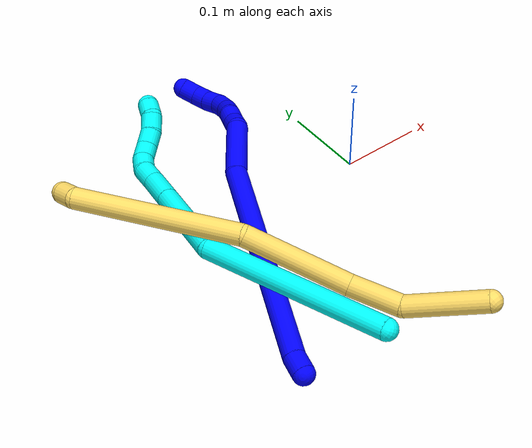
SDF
<sdf version="1.7">
 <world name="default">
  <model name="1">
   <static>0</static>
   <link name="1">
    <collision name="collision-cylinder-e_1_1_4">
     <pose>0.001003 0.008049 -0.007785 -2.33947 0.089374 -0.210129</pose>
     <geometry><cylinder><radius>0.0125</radius><length>0.022485</length></cylinder></geometry>
     <surface>
      <friction><ode><mu>1.16</mu><mu2>1.16</mu2><slip1>0</slip1><slip2>0</slip2></ode></friction>
      <contact><ode><kp>1e+06</kp><kd>1</kd><max_vel>0</max_vel><min_depth>0.001</min_depth></ode></contact>
     </surface>
    </collision>
    <visual name="visual-cylinder-e_1_1_4">
     <pose>0.001003 0.008049 -0.007785 -2.33947 0.089374 -0.210129</pose>
     <geometry><cylinder><radius>0.0125</radius><length>0.022485</length></cylinder></geometry>
     <material><ambient>0 0 1 1</ambient></material>
    </visual>
    <collision name="collision-cylinder-e_2_4_5">
     <pose>0.036285 0.100154 -0.103478 -2.3786 0.274702 -0.663646</pose>
     <geometry><cylinder><radius>0.0125</radius><length>0.252732</length></cylinder></geometry>
     <surface>
      <friction><ode><mu>1.16</mu><mu2>1.16</mu2><slip1>0</slip1><slip2>0</slip2></ode></friction>
      <contact><ode><kp>1e+06</kp><kd>1</kd><max_vel>0</max_vel><min_depth>0.001</min_depth></ode></contact>
     </surface>
    </collision>
    <visual name="visual-cylinder-e_2_4_5">
     <pose>0.036285 0.100154 -0.103478 -2.3786 0.274702 -0.663646</pose>
     <geometry><cylinder><radius>0.0125</radius><length>0.252732</length></cylinder></geometry>
     <material><ambient>0 0 1 1</ambient></material>
    </visual>
    <collision name="collision-cylinder-e_3_5_6">
     <pose>0.085696 0.201375 -0.219219 -2.58896 0.433446 -1.32044</pose>
     <geometry><cylinder><radius>0.0125</radius><length>0.072062</length></cylinder></geometry>
     <surface>
      <friction><ode><mu>1.16</mu><mu2>1.16</mu2><slip1>0</slip1><slip2>0</slip2></ode></friction>
      <contact><ode><kp>1e+06</kp><kd>1</kd><max_vel>0</max_vel><min_depth>0.001</min_depth></ode></contact>
     </surface>
    </collision>
    <visual name="visual-cylinder-e_3_5_6">
     <pose>0.085696 0.201375 -0.219219 -2.58896 0.433446 -1.32044</pose>
     <geometry><cylinder><radius>0.0125</radius><length>0.072062</length></cylinder></geometry>
     <material><ambient>0 0 1 1</ambient></material>
    </visual>
    <collision name="collision-cylinder-e_4_6_7">
     <pose>0.100255 0.222174 -0.256366 -2.76964 -0.057348 0.302555</pose>
     <geometry><cylinder><radius>0.0125</radius><length>0.020032</length></cylinder></geometry>
     <surface>
      <friction><ode><mu>1.16</mu><mu2>1.16</mu2><slip1>0</slip1><slip2>0</slip2></ode></friction>
      <contact><ode><kp>1e+06</kp><kd>1</kd><max_vel>0</max_vel><min_depth>0.001</min_depth></ode></contact>
     </surface>
    </collision>
    <visual name="visual-cylinder-e_4_6_7">
     <pose>0.100255 0.222174 -0.256366 -2.76964 -0.057348 0.302555</pose>
     <geometry><cylinder><radius>0.0125</radius><length>0.020032</length></cylinder></geometry>
     <material><ambient>0 0 1 1</ambient></material>
    </visual>
    <collision name="collision-cylinder-e_5_7_8">
     <pose>0.100366 0.231091 -0.274157 -2.58419 0.06853 -0.238448</pose>
     <geometry><cylinder><radius>0.0125</radius><length>0.02002</length></cylinder></geometry>
     <surface>
      <friction><ode><mu>1.16</mu><mu2>1.16</mu2><slip1>0</slip1><slip2>0</slip2></ode></friction>
      <contact><ode><kp>1e+06</kp><kd>1</kd><max_vel>0</max_vel><min_depth>0.001</min_depth></ode></contact>
     </surface>
    </collision>
    <visual name="visual-cylinder-e_5_7_8">
     <pose>0.100366 0.231091 -0.274157 -2.58419 0.06853 -0.238448</pose>
     <geometry><cylinder><radius>0.0125</radius><length>0.02002</length></cylinder></geometry>
     <material><ambient>0 0 1 1</ambient></material>
    </visual>
    <collision name="collision-cylinder-e_6_8_9">
     <pose>0.099744 0.239997 -0.295843 -2.87391 -0.095146 0.679737</pose>
     <geometry><cylinder><radius>0.0125</radius><length>0.027522</length></cylinder></geometry>
     <surface>
      <friction><ode><mu>1.16</mu><mu2>1.16</mu2><slip1>0</slip1><slip2>0</slip2></ode></friction>
      <contact><ode><kp>1e+06</kp><kd>1</kd><max_vel>0</max_vel><min_depth>0.001</min_depth></ode></contact>
     </surface>
    </collision>
    <visual name="visual-cylinder-e_6_8_9">
     <pose>0.099744 0.239997 -0.295843 -2.87391 -0.095146 0.679737</pose>
     <geometry><cylinder><radius>0.0125</radius><length>0.027522</length></cylinder></geometry>
     <material><ambient>0 0 1 1</ambient></material>
    </visual>
    <collision name="collision-cylinder-e_7_9_10">
     <pose>0.096235 0.249585 -0.319526 -2.62379 -0.180749 0.659354</pose>
     <geometry><cylinder><radius>0.0125</radius><length>0.024503</length></cylinder></geometry>
     <surface>
      <friction><ode><mu>1.16</mu><mu2>1.16</mu2><slip1>0</slip1><slip2>0</slip2></ode></friction>
      <contact><ode><kp>1e+06</kp><kd>1</kd><max_vel>0</max_vel><min_depth>0.001</min_depth></ode></contact>
     </surface>
    </collision>
    <visual name="visual-cylinder-e_7_9_10">
     <pose>0.096235 0.249585 -0.319526 -2.62379 -0.180749 0.659354</pose>
     <geometry><cylinder><radius>0.0125</radius><length>0.024503</length></cylinder></geometry>
     <material><ambient>0 0 1 1</ambient></material>
    </visual>
    <collision name="collision-cylinder-e_8_10_11">
     <pose>0.090012 0.262607 -0.336295 -2.2994 -0.401946 0.853764</pose>
     <geometry><cylinder><radius>0.0125</radius><length>0.020552</length></cylinder></geometry>
     <surface>
      <friction><ode><mu>1.16</mu><mu2>1.16</mu2><slip1>0</slip1><slip2>0</slip2></ode></friction>
      <contact><ode><kp>1e+06</kp><kd>1</kd><max_vel>0</max_vel><min_depth>0.001</min_depth></ode></contact>
     </surface>
    </collision>
    <visual name="visual-cylinder-e_8_10_11">
     <pose>0.090012 0.262607 -0.336295 -2.2994 -0.401946 0.853764</pose>
     <geometry><cylinder><radius>0.0125</radius><length>0.020552</length></cylinder></geometry>
     <material><ambient>0 0 1 1</ambient></material>
    </visual>
    <collision name="collision-cylinder-e_9_11_12">
     <pose>0.082974 0.277478 -0.348086 -2.18351 -0.305957 0.577132</pose>
     <geometry><cylinder><radius>0.0125</radius><length>0.020038</length></cylinder></geometry>
     <surface>
      <friction><ode><mu>1.16</mu><mu2>1.16</mu2><slip1>0</slip1><slip2>0</slip2></ode></friction>
      <contact><ode><kp>1e+06</kp><kd>1</kd><max_vel>0</max_vel><min_depth>0.001</min_depth></ode></contact>
     </surface>
    </collision>
    <visual name="visual-cylinder-e_9_11_12">
     <pose>0.082974 0.277478 -0.348086 -2.18351 -0.305957 0.577132</pose>
     <geometry><cylinder><radius>0.0125</radius><length>0.020038</length></cylinder></geometry>
     <material><ambient>0 0 1 1</ambient></material>
    </visual>
    <collision name="collision-cylinder-e_10_12_2">
     <pose>0.077382 0.29492 -0.354696 -1.68621 -0.2597 0.291121</pose>
     <geometry><cylinder><radius>0.0125</radius><length>0.020053</length></cylinder></geometry>
     <surface>
      <friction><ode><mu>1.16</mu><mu2>1.16</mu2><slip1>0</slip1><slip2>0</slip2></ode></friction>
      <contact><ode><kp>1e+06</kp><kd>1</kd><max_vel>0</max_vel><min_depth>0.001</min_depth></ode></contact>
     </surface>
    </collision>
    <visual name="visual-cylinder-e_10_12_2">
     <pose>0.077382 0.29492 -0.354696 -1.68621 -0.2597 0.291121</pose>
     <geometry><cylinder><radius>0.0125</radius><length>0.020053</length></cylinder></geometry>
     <material><ambient>0 0 1 1</ambient></material>
    </visual>
    <collision name="collision-sphere-2">
     <pose>0.074807 0.304546 -0.355812 0 -0 0</pose>
     <geometry><sphere><radius>0.0125</radius></sphere></geometry>
     <surface>
      <friction><ode><mu>1.16</mu><mu2>1.16</mu2><slip1>0</slip1><slip2>0</slip2></ode></friction>
      <contact><ode><kp>1e+06</kp><kd>1</kd><max_vel>0</max_vel><min_depth>0.001</min_depth></ode></contact>
     </surface>
    </collision>
    <visual name="visual-sphere-2">
     <pose>0.074807 0.304546 -0.355812 0 -0 0</pose>
     <geometry><sphere><radius>0.0125</radius></sphere></geometry>
     <material><ambient>0 0 1 1</ambient></material>
    </visual>
    <collision name="collision-sphere-12">
     <pose>0.079957 0.285294 -0.35358 0 -0 0</pose>
     <geometry><sphere><radius>0.0125</radius></sphere></geometry>
     <surface>
      <friction><ode><mu>1.16</mu><mu2>1.16</mu2><slip1>0</slip1><slip2>0</slip2></ode></friction>
      <contact><ode><kp>1e+06</kp><kd>1</kd><max_vel>0</max_vel><min_depth>0.001</min_depth></ode></contact>
     </surface>
    </collision>
    <visual name="visual-sphere-12">
     <pose>0.079957 0.285294 -0.35358 0 -0 0</pose>
     <geometry><sphere><radius>0.0125</radius></sphere></geometry>
     <material><ambient>0 0 1 1</ambient></material>
    </visual>
    <collision name="collision-sphere-11">
     <pose>0.085992 0.269663 -0.342592 0 -0 0</pose>
     <geometry><sphere><radius>0.0125</radius></sphere></geometry>
     <surface>
      <friction><ode><mu>1.16</mu><mu2>1.16</mu2><slip1>0</slip1><slip2>0</slip2></ode></friction>
      <contact><ode><kp>1e+06</kp><kd>1</kd><max_vel>0</max_vel><min_depth>0.001</min_depth></ode></contact>
     </surface>
    </collision>
    <visual name="visual-sphere-11">
     <pose>0.085992 0.269663 -0.342592 0 -0 0</pose>
     <geometry><sphere><radius>0.0125</radius></sphere></geometry>
     <material><ambient>0 0 1 1</ambient></material>
    </visual>
    <collision name="collision-sphere-10">
     <pose>0.094032 0.255551 -0.329998 0 -0 0</pose>
     <geometry><sphere><radius>0.0125</radius></sphere></geometry>
     <surface>
      <friction><ode><mu>1.16</mu><mu2>1.16</mu2><slip1>0</slip1><slip2>0</slip2></ode></friction>
      <contact><ode><kp>1e+06</kp><kd>1</kd><max_vel>0</max_vel><min_depth>0.001</min_depth></ode></contact>
     </surface>
    </collision>
    <visual name="visual-sphere-10">
     <pose>0.094032 0.255551 -0.329998 0 -0 0</pose>
     <geometry><sphere><radius>0.0125</radius></sphere></geometry>
     <material><ambient>0 0 1 1</ambient></material>
    </visual>
    <collision name="collision-sphere-9">
     <pose>0.098437 0.24362 -0.309054 0 -0 0</pose>
     <geometry><sphere><radius>0.0125</radius></sphere></geometry>
     <surface>
      <friction><ode><mu>1.16</mu><mu2>1.16</mu2><slip1>0</slip1><slip2>0</slip2></ode></friction>
      <contact><ode><kp>1e+06</kp><kd>1</kd><max_vel>0</max_vel><min_depth>0.001</min_depth></ode></contact>
     </surface>
    </collision>
    <visual name="visual-sphere-9">
     <pose>0.098437 0.24362 -0.309054 0 -0 0</pose>
     <geometry><sphere><radius>0.0125</radius></sphere></geometry>
     <material><ambient>0 0 1 1</ambient></material>
    </visual>
    <collision name="collision-sphere-4">
     <pose>0.002007 0.016099 -0.015569 0 -0 0</pose>
     <geometry><sphere><radius>0.0125</radius></sphere></geometry>
     <surface>
      <friction><ode><mu>1.16</mu><mu2>1.16</mu2><slip1>0</slip1><slip2>0</slip2></ode></friction>
      <contact><ode><kp>1e+06</kp><kd>1</kd><max_vel>0</max_vel><min_depth>0.001</min_depth></ode></contact>
     </surface>
    </collision>
    <visual name="visual-sphere-4">
     <pose>0.002007 0.016099 -0.015569 0 -0 0</pose>
     <geometry><sphere><radius>0.0125</radius></sphere></geometry>
     <material><ambient>0 0 1 1</ambient></material>
    </visual>
    <collision name="collision-sphere-1">
     <geometry><sphere><radius>0.0125</radius></sphere></geometry>
     <surface>
      <friction><ode><mu>1.16</mu><mu2>1.16</mu2><slip1>0</slip1><slip2>0</slip2></ode></friction>
      <contact><ode><kp>1e+06</kp><kd>1</kd><max_vel>0</max_vel><min_depth>0.001</min_depth></ode></contact>
     </surface>
    </collision>
    <visual name="visual-sphere-1">
     <geometry><sphere><radius>0.0125</radius></sphere></geometry>
     <material><ambient>0 0 1 1</ambient></material>
    </visual>
    <collision name="collision-sphere-8">
     <pose>0.101052 0.236373 -0.282632 0 -0 0</pose>
     <geometry><sphere><radius>0.0125</radius></sphere></geometry>
     <surface>
      <friction><ode><mu>1.16</mu><mu2>1.16</mu2><slip1>0</slip1><slip2>0</slip2></ode></friction>
      <contact><ode><kp>1e+06</kp><kd>1</kd><max_vel>0</max_vel><min_depth>0.001</min_depth></ode></contact>
     </surface>
    </collision>
    <visual name="visual-sphere-8">
     <pose>0.101052 0.236373 -0.282632 0 -0 0</pose>
     <geometry><sphere><radius>0.0125</radius></sphere></geometry>
     <material><ambient>0 0 1 1</ambient></material>
    </visual>
    <collision name="collision-sphere-5">
     <pose>0.070563 0.18421 -0.191388 0 -0 0</pose>
     <geometry><sphere><radius>0.0125</radius></sphere></geometry>
     <surface>
      <friction><ode><mu>1.16</mu><mu2>1.16</mu2><slip1>0</slip1><slip2>0</slip2></ode></friction>
      <contact><ode><kp>1e+06</kp><kd>1</kd><max_vel>0</max_vel><min_depth>0.001</min_depth></ode></contact>
     </surface>
    </collision>
    <visual name="visual-sphere-5">
     <pose>0.070563 0.18421 -0.191388 0 -0 0</pose>
     <geometry><sphere><radius>0.0125</radius></sphere></geometry>
     <material><ambient>0 0 1 1</ambient></material>
    </visual>
    <collision name="collision-sphere-6">
     <pose>0.100829 0.21854 -0.24705 0 -0 0</pose>
     <geometry><sphere><radius>0.0125</radius></sphere></geometry>
     <surface>
      <friction><ode><mu>1.16</mu><mu2>1.16</mu2><slip1>0</slip1><slip2>0</slip2></ode></friction>
      <contact><ode><kp>1e+06</kp><kd>1</kd><max_vel>0</max_vel><min_depth>0.001</min_depth></ode></contact>
     </surface>
    </collision>
    <visual name="visual-sphere-6">
     <pose>0.100829 0.21854 -0.24705 0 -0 0</pose>
     <geometry><sphere><radius>0.0125</radius></sphere></geometry>
     <material><ambient>0 0 1 1</ambient></material>
    </visual>
    <collision name="collision-sphere-7">
     <pose>0.099681 0.225808 -0.265682 0 -0 0</pose>
     <geometry><sphere><radius>0.0125</radius></sphere></geometry>
     <surface>
      <friction><ode><mu>1.16</mu><mu2>1.16</mu2><slip1>0</slip1><slip2>0</slip2></ode></friction>
      <contact><ode><kp>1e+06</kp><kd>1</kd><max_vel>0</max_vel><min_depth>0.001</min_depth></ode></contact>
     </surface>
    </collision>
    <visual name="visual-sphere-7">
     <pose>0.099681 0.225808 -0.265682 0 -0 0</pose>
     <geometry><sphere><radius>0.0125</radius></sphere></geometry>
     <material><ambient>0 0 1 1</ambient></material>
    </visual>
    <inertial>
     <pose>0.059107 0.157348 -0.179439 0 -0 0</pose>
     <mass>0.5</mass>
     <inertia>
      <ixx>0.000225</ixx>
      <ixy>0</ixy>
      <ixz>0</ixz>
      <iyy>-0.001428</iyy>
      <iyz>0</iyz>
      <izz>-0.001333</izz>
     </inertia>
    </inertial>
   </link>
   <pose>-0.248974 -0.222295 0.011492 0.736165 -0.722366 -0.148345</pose>
  </model>
  <model name="3">
   <static>0</static>
   <link name="3">
    <collision name="collision-cylinder-e_1_1_4">
     <pose>-0.028188 0.102792 0.031234 -1.2758 -0.256599 0.190684</pose>
     <geometry><cylinder><radius>0.0125</radius><length>0.222138</length></cylinder></geometry>
     <surface>
      <friction><ode><mu>1.16</mu><mu2>1.16</mu2><slip1>0</slip1><slip2>0</slip2></ode></friction>
      <contact><ode><kp>1e+06</kp><kd>1</kd><max_vel>0</max_vel><min_depth>0.001</min_depth></ode></contact>
     </surface>
    </collision>
    <visual name="visual-cylinder-e_1_1_4">
     <pose>-0.028188 0.102792 0.031234 -1.2758 -0.256599 0.190684</pose>
     <geometry><cylinder><radius>0.0125</radius><length>0.222138</length></cylinder></geometry>
     <material><ambient>0.003922 1 0.996078 1</ambient></material>
    </visual>
    <collision name="collision-cylinder-e_2_4_5">
     <pose>-0.057815 0.260384 0.054405 -1.7169 -0.025951 0.030049</pose>
     <geometry><cylinder><radius>0.0125</radius><length>0.110819</length></cylinder></geometry>
     <surface>
      <friction><ode><mu>1.16</mu><mu2>1.16</mu2><slip1>0</slip1><slip2>0</slip2></ode></friction>
      <contact><ode><kp>1e+06</kp><kd>1</kd><max_vel>0</max_vel><min_depth>0.001</min_depth></ode></contact>
     </surface>
    </collision>
    <visual name="visual-cylinder-e_2_4_5">
     <pose>-0.057815 0.260384 0.054405 -1.7169 -0.025951 0.030049</pose>
     <geometry><cylinder><radius>0.0125</radius><length>0.110819</length></cylinder></geometry>
     <material><ambient>0.003922 1 0.996078 1</ambient></material>
    </visual>
    <collision name="collision-cylinder-e_3_5_6">
     <pose>-0.059786 0.33526 0.04338 -1.71725 -0.026272 0.030431</pose>
     <geometry><cylinder><radius>0.0125</radius><length>0.040598</length></cylinder></geometry>
     <surface>
      <friction><ode><mu>1.16</mu><mu2>1.16</mu2><slip1>0</slip1><slip2>0</slip2></ode></friction>
      <contact><ode><kp>1e+06</kp><kd>1</kd><max_vel>0</max_vel><min_depth>0.001</min_depth></ode></contact>
     </surface>
    </collision>
    <visual name="visual-cylinder-e_3_5_6">
     <pose>-0.059786 0.33526 0.04338 -1.71725 -0.026272 0.030431</pose>
     <geometry><cylinder><radius>0.0125</radius><length>0.040598</length></cylinder></geometry>
     <material><ambient>0.003922 1 0.996078 1</ambient></material>
    </visual>
    <collision name="collision-cylinder-e_4_6_7">
     <pose>-0.060317 0.368279 0.039908 -1.61021 0.000127 -0.000132</pose>
     <geometry><cylinder><radius>0.0125</radius><length>0.02591</length></cylinder></geometry>
     <surface>
      <friction><ode><mu>1.16</mu><mu2>1.16</mu2><slip1>0</slip1><slip2>0</slip2></ode></friction>
      <contact><ode><kp>1e+06</kp><kd>1</kd><max_vel>0</max_vel><min_depth>0.001</min_depth></ode></contact>
     </surface>
    </collision>
    <visual name="visual-cylinder-e_4_6_7">
     <pose>-0.060317 0.368279 0.039908 -1.61021 0.000127 -0.000132</pose>
     <geometry><cylinder><radius>0.0125</radius><length>0.02591</length></cylinder></geometry>
     <material><ambient>0.003922 1 0.996078 1</ambient></material>
    </visual>
    <collision name="collision-cylinder-e_5_7_8">
     <pose>-0.057572 0.390483 0.036314 -1.89222 0.274042 -0.377916</pose>
     <geometry><cylinder><radius>0.0125</radius><length>0.020274</length></cylinder></geometry>
     <surface>
      <friction><ode><mu>1.16</mu><mu2>1.16</mu2><slip1>0</slip1><slip2>0</slip2></ode></friction>
      <contact><ode><kp>1e+06</kp><kd>1</kd><max_vel>0</max_vel><min_depth>0.001</min_depth></ode></contact>
     </surface>
    </collision>
    <visual name="visual-cylinder-e_5_7_8">
     <pose>-0.057572 0.390483 0.036314 -1.89222 0.274042 -0.377916</pose>
     <geometry><cylinder><radius>0.0125</radius><length>0.020274</length></cylinder></geometry>
     <material><ambient>0.003922 1 0.996078 1</ambient></material>
    </visual>
    <collision name="collision-cylinder-e_6_8_9">
     <pose>-0.048842 0.406847 0.029526 -2.05155 0.641674 -1.00282</pose>
     <geometry><cylinder><radius>0.0125</radius><length>0.020007</length></cylinder></geometry>
     <surface>
      <friction><ode><mu>1.16</mu><mu2>1.16</mu2><slip1>0</slip1><slip2>0</slip2></ode></friction>
      <contact><ode><kp>1e+06</kp><kd>1</kd><max_vel>0</max_vel><min_depth>0.001</min_depth></ode></contact>
     </surface>
    </collision>
    <visual name="visual-cylinder-e_6_8_9">
     <pose>-0.048842 0.406847 0.029526 -2.05155 0.641674 -1.00282</pose>
     <geometry><cylinder><radius>0.0125</radius><length>0.020007</length></cylinder></geometry>
     <material><ambient>0.003922 1 0.996078 1</ambient></material>
    </visual>
    <collision name="collision-cylinder-e_7_9_10">
     <pose>-0.035008 0.419809 0.023713 -1.91608 0.90022 -1.2043</pose>
     <geometry><cylinder><radius>0.0125</radius><length>0.020031</length></cylinder></geometry>
     <surface>
      <friction><ode><mu>1.16</mu><mu2>1.16</mu2><slip1>0</slip1><slip2>0</slip2></ode></friction>
      <contact><ode><kp>1e+06</kp><kd>1</kd><max_vel>0</max_vel><min_depth>0.001</min_depth></ode></contact>
     </surface>
    </collision>
    <visual name="visual-cylinder-e_7_9_10">
     <pose>-0.035008 0.419809 0.023713 -1.91608 0.90022 -1.2043</pose>
     <geometry><cylinder><radius>0.0125</radius><length>0.020031</length></cylinder></geometry>
     <material><ambient>0.003922 1 0.996078 1</ambient></material>
    </visual>
    <collision name="collision-cylinder-e_8_10_11">
     <pose>-0.020496 0.433219 0.020922 -1.66115 0.720953 -0.782713</pose>
     <geometry><cylinder><radius>0.0125</radius><length>0.020195</length></cylinder></geometry>
     <surface>
      <friction><ode><mu>1.16</mu><mu2>1.16</mu2><slip1>0</slip1><slip2>0</slip2></ode></friction>
      <contact><ode><kp>1e+06</kp><kd>1</kd><max_vel>0</max_vel><min_depth>0.001</min_depth></ode></contact>
     </surface>
    </collision>
    <visual name="visual-cylinder-e_8_10_11">
     <pose>-0.020496 0.433219 0.020922 -1.66115 0.720953 -0.782713</pose>
     <geometry><cylinder><radius>0.0125</radius><length>0.020195</length></cylinder></geometry>
     <material><ambient>0.003922 1 0.996078 1</ambient></material>
    </visual>
    <collision name="collision-cylinder-e_9_11_2">
     <pose>-0.011015 0.450254 0.018659 -1.7358 0.284949 -0.335436</pose>
     <geometry><cylinder><radius>0.0125</radius><length>0.02003</length></cylinder></geometry>
     <surface>
      <friction><ode><mu>1.16</mu><mu2>1.16</mu2><slip1>0</slip1><slip2>0</slip2></ode></friction>
      <contact><ode><kp>1e+06</kp><kd>1</kd><max_vel>0</max_vel><min_depth>0.001</min_depth></ode></contact>
     </surface>
    </collision>
    <visual name="visual-cylinder-e_9_11_2">
     <pose>-0.011015 0.450254 0.018659 -1.7358 0.284949 -0.335436</pose>
     <geometry><cylinder><radius>0.0125</radius><length>0.02003</length></cylinder></geometry>
     <material><ambient>0.003922 1 0.996078 1</ambient></material>
    </visual>
    <collision name="collision-sphere-2">
     <pose>-0.0082 0.459734 0.017081 0 -0 0</pose>
     <geometry><sphere><radius>0.0125</radius></sphere></geometry>
     <surface>
      <friction><ode><mu>1.16</mu><mu2>1.16</mu2><slip1>0</slip1><slip2>0</slip2></ode></friction>
      <contact><ode><kp>1e+06</kp><kd>1</kd><max_vel>0</max_vel><min_depth>0.001</min_depth></ode></contact>
     </surface>
    </collision>
    <visual name="visual-sphere-2">
     <pose>-0.0082 0.459734 0.017081 0 -0 0</pose>
     <geometry><sphere><radius>0.0125</radius></sphere></geometry>
     <material><ambient>0.003922 1 0.996078 1</ambient></material>
    </visual>
    <collision name="collision-sphere-11">
     <pose>-0.013831 0.440773 0.020238 0 -0 0</pose>
     <geometry><sphere><radius>0.0125</radius></sphere></geometry>
     <surface>
      <friction><ode><mu>1.16</mu><mu2>1.16</mu2><slip1>0</slip1><slip2>0</slip2></ode></friction>
      <contact><ode><kp>1e+06</kp><kd>1</kd><max_vel>0</max_vel><min_depth>0.001</min_depth></ode></contact>
     </surface>
    </collision>
    <visual name="visual-sphere-11">
     <pose>-0.013831 0.440773 0.020238 0 -0 0</pose>
     <geometry><sphere><radius>0.0125</radius></sphere></geometry>
     <material><ambient>0.003922 1 0.996078 1</ambient></material>
    </visual>
    <collision name="collision-sphere-10">
     <pose>-0.027161 0.425665 0.021607 0 -0 0</pose>
     <geometry><sphere><radius>0.0125</radius></sphere></geometry>
     <surface>
      <friction><ode><mu>1.16</mu><mu2>1.16</mu2><slip1>0</slip1><slip2>0</slip2></ode></friction>
      <contact><ode><kp>1e+06</kp><kd>1</kd><max_vel>0</max_vel><min_depth>0.001</min_depth></ode></contact>
     </surface>
    </collision>
    <visual name="visual-sphere-10">
     <pose>-0.027161 0.425665 0.021607 0 -0 0</pose>
     <geometry><sphere><radius>0.0125</radius></sphere></geometry>
     <material><ambient>0.003922 1 0.996078 1</ambient></material>
    </visual>
    <collision name="collision-sphere-9">
     <pose>-0.042854 0.413952 0.02582 0 -0 0</pose>
     <geometry><sphere><radius>0.0125</radius></sphere></geometry>
     <surface>
      <friction><ode><mu>1.16</mu><mu2>1.16</mu2><slip1>0</slip1><slip2>0</slip2></ode></friction>
      <contact><ode><kp>1e+06</kp><kd>1</kd><max_vel>0</max_vel><min_depth>0.001</min_depth></ode></contact>
     </surface>
    </collision>
    <visual name="visual-sphere-9">
     <pose>-0.042854 0.413952 0.02582 0 -0 0</pose>
     <geometry><sphere><radius>0.0125</radius></sphere></geometry>
     <material><ambient>0.003922 1 0.996078 1</ambient></material>
    </visual>
    <collision name="collision-sphere-4">
     <pose>-0.056377 0.205583 0.062469 0 -0 0</pose>
     <geometry><sphere><radius>0.0125</radius></sphere></geometry>
     <surface>
      <friction><ode><mu>1.16</mu><mu2>1.16</mu2><slip1>0</slip1><slip2>0</slip2></ode></friction>
      <contact><ode><kp>1e+06</kp><kd>1</kd><max_vel>0</max_vel><min_depth>0.001</min_depth></ode></contact>
     </surface>
    </collision>
    <visual name="visual-sphere-4">
     <pose>-0.056377 0.205583 0.062469 0 -0 0</pose>
     <geometry><sphere><radius>0.0125</radius></sphere></geometry>
     <material><ambient>0.003922 1 0.996078 1</ambient></material>
    </visual>
    <collision name="collision-sphere-1">
     <geometry><sphere><radius>0.0125</radius></sphere></geometry>
     <surface>
      <friction><ode><mu>1.16</mu><mu2>1.16</mu2><slip1>0</slip1><slip2>0</slip2></ode></friction>
      <contact><ode><kp>1e+06</kp><kd>1</kd><max_vel>0</max_vel><min_depth>0.001</min_depth></ode></contact>
     </surface>
    </collision>
    <visual name="visual-sphere-1">
     <geometry><sphere><radius>0.0125</radius></sphere></geometry>
     <material><ambient>0.003922 1 0.996078 1</ambient></material>
    </visual>
    <collision name="collision-sphere-8">
     <pose>-0.054829 0.399742 0.033232 0 -0 0</pose>
     <geometry><sphere><radius>0.0125</radius></sphere></geometry>
     <surface>
      <friction><ode><mu>1.16</mu><mu2>1.16</mu2><slip1>0</slip1><slip2>0</slip2></ode></friction>
      <contact><ode><kp>1e+06</kp><kd>1</kd><max_vel>0</max_vel><min_depth>0.001</min_depth></ode></contact>
     </surface>
    </collision>
    <visual name="visual-sphere-8">
     <pose>-0.054829 0.399742 0.033232 0 -0 0</pose>
     <geometry><sphere><radius>0.0125</radius></sphere></geometry>
     <material><ambient>0.003922 1 0.996078 1</ambient></material>
    </visual>
    <collision name="collision-sphere-5">
     <pose>-0.059252 0.315185 0.046341 0 -0 0</pose>
     <geometry><sphere><radius>0.0125</radius></sphere></geometry>
     <surface>
      <friction><ode><mu>1.16</mu><mu2>1.16</mu2><slip1>0</slip1><slip2>0</slip2></ode></friction>
      <contact><ode><kp>1e+06</kp><kd>1</kd><max_vel>0</max_vel><min_depth>0.001</min_depth></ode></contact>
     </surface>
    </collision>
    <visual name="visual-sphere-5">
     <pose>-0.059252 0.315185 0.046341 0 -0 0</pose>
     <geometry><sphere><radius>0.0125</radius></sphere></geometry>
     <material><ambient>0.003922 1 0.996078 1</ambient></material>
    </visual>
    <collision name="collision-sphere-6">
     <pose>-0.060319 0.355334 0.040418 0 -0 0</pose>
     <geometry><sphere><radius>0.0125</radius></sphere></geometry>
     <surface>
      <friction><ode><mu>1.16</mu><mu2>1.16</mu2><slip1>0</slip1><slip2>0</slip2></ode></friction>
      <contact><ode><kp>1e+06</kp><kd>1</kd><max_vel>0</max_vel><min_depth>0.001</min_depth></ode></contact>
     </surface>
    </collision>
    <visual name="visual-sphere-6">
     <pose>-0.060319 0.355334 0.040418 0 -0 0</pose>
     <geometry><sphere><radius>0.0125</radius></sphere></geometry>
     <material><ambient>0.003922 1 0.996078 1</ambient></material>
    </visual>
    <collision name="collision-sphere-7">
     <pose>-0.060316 0.381224 0.039397 0 -0 0</pose>
     <geometry><sphere><radius>0.0125</radius></sphere></geometry>
     <surface>
      <friction><ode><mu>1.16</mu><mu2>1.16</mu2><slip1>0</slip1><slip2>0</slip2></ode></friction>
      <contact><ode><kp>1e+06</kp><kd>1</kd><max_vel>0</max_vel><min_depth>0.001</min_depth></ode></contact>
     </surface>
    </collision>
    <visual name="visual-sphere-7">
     <pose>-0.060316 0.381224 0.039397 0 -0 0</pose>
     <geometry><sphere><radius>0.0125</radius></sphere></geometry>
     <material><ambient>0.003922 1 0.996078 1</ambient></material>
    </visual>
    <inertial>
     <pose>-0.040278 0.234149 0.036722 0 -0 0</pose>
     <mass>0.5</mass>
     <inertia>
      <ixx>0.001176</ixx>
      <ixy>0</ixy>
      <ixz>0</ixz>
      <iyy>0.000494</iyy>
      <iyz>0</iyz>
      <izz>-0.00075</izz>
     </inertia>
    </inertial>
   </link>
   <pose>-0.172352 -0.256324 0.056895 -0.092199 -0.874686 -0.015062</pose>
  </model>
  <model name="5">
   <static>0</static>
   <link name="5">
    <collision name="collision-cylinder-e_1_1_4">
     <pose>-0.030523 0.015689 -0.030489 -2.66636 -0.727359 2.00818</pose>
     <geometry><cylinder><radius>0.0125</radius><length>0.091813</length></cylinder></geometry>
     <surface>
      <friction><ode><mu>1.16</mu><mu2>1.16</mu2><slip1>0</slip1><slip2>0</slip2></ode></friction>
      <contact><ode><kp>1e+06</kp><kd>1</kd><max_vel>0</max_vel><min_depth>0.001</min_depth></ode></contact>
     </surface>
    </collision>
    <visual name="visual-cylinder-e_1_1_4">
     <pose>-0.030523 0.015689 -0.030489 -2.66636 -0.727359 2.00818</pose>
     <geometry><cylinder><radius>0.0125</radius><length>0.091813</length></cylinder></geometry>
     <material><ambient>1 0.858824 0.4 1</ambient></material>
    </visual>
    <collision name="collision-cylinder-e_2_4_5">
     <pose>-0.072486 0.036542 -0.089845 -2.96455 -0.371942 2.26005</pose>
     <geometry><cylinder><radius>0.0125</radius><length>0.062954</length></cylinder></geometry>
     <surface>
      <friction><ode><mu>1.16</mu><mu2>1.16</mu2><slip1>0</slip1><slip2>0</slip2></ode></friction>
      <contact><ode><kp>1e+06</kp><kd>1</kd><max_vel>0</max_vel><min_depth>0.001</min_depth></ode></contact>
     </surface>
    </collision>
    <visual name="visual-cylinder-e_2_4_5">
     <pose>-0.072486 0.036542 -0.089845 -2.96455 -0.371942 2.26005</pose>
     <geometry><cylinder><radius>0.0125</radius><length>0.062954</length></cylinder></geometry>
     <material><ambient>1 0.858824 0.4 1</ambient></material>
    </visual>
    <collision name="collision-cylinder-e_3_5_6">
     <pose>-0.089489 0.078061 -0.169433 -2.51973 -0.088911 0.275109</pose>
     <geometry><cylinder><radius>0.0125</radius><length>0.125304</length></cylinder></geometry>
     <surface>
      <friction><ode><mu>1.16</mu><mu2>1.16</mu2><slip1>0</slip1><slip2>0</slip2></ode></friction>
      <contact><ode><kp>1e+06</kp><kd>1</kd><max_vel>0</max_vel><min_depth>0.001</min_depth></ode></contact>
     </surface>
    </collision>
    <visual name="visual-cylinder-e_3_5_6">
     <pose>-0.089489 0.078061 -0.169433 -2.51973 -0.088911 0.275109</pose>
     <geometry><cylinder><radius>0.0125</radius><length>0.125304</length></cylinder></geometry>
     <material><ambient>1 0.858824 0.4 1</ambient></material>
    </visual>
    <collision name="collision-cylinder-e_4_6_7">
     <pose>-0.1382 0.148323 -0.302323 -2.75021 -0.451915 1.7184</pose>
     <geometry><cylinder><radius>0.0125</radius><length>0.197616</length></cylinder></geometry>
     <surface>
      <friction><ode><mu>1.16</mu><mu2>1.16</mu2><slip1>0</slip1><slip2>0</slip2></ode></friction>
      <contact><ode><kp>1e+06</kp><kd>1</kd><max_vel>0</max_vel><min_depth>0.001</min_depth></ode></contact>
     </surface>
    </collision>
    <visual name="visual-cylinder-e_4_6_7">
     <pose>-0.1382 0.148323 -0.302323 -2.75021 -0.451915 1.7184</pose>
     <geometry><cylinder><radius>0.0125</radius><length>0.197616</length></cylinder></geometry>
     <material><ambient>1 0.858824 0.4 1</ambient></material>
    </visual>
    <collision name="collision-cylinder-e_5_7_2">
     <pose>-0.186238 0.180513 -0.394369 2.96938 -0.453686 -2.42583</pose>
     <geometry><cylinder><radius>0.0125</radius><length>0.022313</length></cylinder></geometry>
     <surface>
      <friction><ode><mu>1.16</mu><mu2>1.16</mu2><slip1>0</slip1><slip2>0</slip2></ode></friction>
      <contact><ode><kp>1e+06</kp><kd>1</kd><max_vel>0</max_vel><min_depth>0.001</min_depth></ode></contact>
     </surface>
    </collision>
    <visual name="visual-cylinder-e_5_7_2">
     <pose>-0.186238 0.180513 -0.394369 2.96938 -0.453686 -2.42583</pose>
     <geometry><cylinder><radius>0.0125</radius><length>0.022313</length></cylinder></geometry>
     <material><ambient>1 0.858824 0.4 1</ambient></material>
    </visual>
    <collision name="collision-sphere-2">
     <pose>-0.191128 0.178795 -0.404249 0 -0 0</pose>
     <geometry><sphere><radius>0.0125</radius></sphere></geometry>
     <surface>
      <friction><ode><mu>1.16</mu><mu2>1.16</mu2><slip1>0</slip1><slip2>0</slip2></ode></friction>
      <contact><ode><kp>1e+06</kp><kd>1</kd><max_vel>0</max_vel><min_depth>0.001</min_depth></ode></contact>
     </surface>
    </collision>
    <visual name="visual-sphere-2">
     <pose>-0.191128 0.178795 -0.404249 0 -0 0</pose>
     <geometry><sphere><radius>0.0125</radius></sphere></geometry>
     <material><ambient>1 0.858824 0.4 1</ambient></material>
    </visual>
    <collision name="collision-sphere-7">
     <pose>-0.181348 0.182232 -0.38449 0 -0 0</pose>
     <geometry><sphere><radius>0.0125</radius></sphere></geometry>
     <surface>
      <friction><ode><mu>1.16</mu><mu2>1.16</mu2><slip1>0</slip1><slip2>0</slip2></ode></friction>
      <contact><ode><kp>1e+06</kp><kd>1</kd><max_vel>0</max_vel><min_depth>0.001</min_depth></ode></contact>
     </surface>
    </collision>
    <visual name="visual-sphere-7">
     <pose>-0.181348 0.182232 -0.38449 0 -0 0</pose>
     <geometry><sphere><radius>0.0125</radius></sphere></geometry>
     <material><ambient>1 0.858824 0.4 1</ambient></material>
    </visual>
    <collision name="collision-sphere-6">
     <pose>-0.095052 0.114415 -0.220155 0 -0 0</pose>
     <geometry><sphere><radius>0.0125</radius></sphere></geometry>
     <surface>
      <friction><ode><mu>1.16</mu><mu2>1.16</mu2><slip1>0</slip1><slip2>0</slip2></ode></friction>
      <contact><ode><kp>1e+06</kp><kd>1</kd><max_vel>0</max_vel><min_depth>0.001</min_depth></ode></contact>
     </surface>
    </collision>
    <visual name="visual-sphere-6">
     <pose>-0.095052 0.114415 -0.220155 0 -0 0</pose>
     <geometry><sphere><radius>0.0125</radius></sphere></geometry>
     <material><ambient>1 0.858824 0.4 1</ambient></material>
    </visual>
    <collision name="collision-sphere-5">
     <pose>-0.083925 0.041707 -0.118711 0 -0 0</pose>
     <geometry><sphere><radius>0.0125</radius></sphere></geometry>
     <surface>
      <friction><ode><mu>1.16</mu><mu2>1.16</mu2><slip1>0</slip1><slip2>0</slip2></ode></friction>
      <contact><ode><kp>1e+06</kp><kd>1</kd><max_vel>0</max_vel><min_depth>0.001</min_depth></ode></contact>
     </surface>
    </collision>
    <visual name="visual-sphere-5">
     <pose>-0.083925 0.041707 -0.118711 0 -0 0</pose>
     <geometry><sphere><radius>0.0125</radius></sphere></geometry>
     <material><ambient>1 0.858824 0.4 1</ambient></material>
    </visual>
    <collision name="collision-sphere-1">
     <geometry><sphere><radius>0.0125</radius></sphere></geometry>
     <surface>
      <friction><ode><mu>1.16</mu><mu2>1.16</mu2><slip1>0</slip1><slip2>0</slip2></ode></friction>
      <contact><ode><kp>1e+06</kp><kd>1</kd><max_vel>0</max_vel><min_depth>0.001</min_depth></ode></contact>
     </surface>
    </collision>
    <visual name="visual-sphere-1">
     <geometry><sphere><radius>0.0125</radius></sphere></geometry>
     <material><ambient>1 0.858824 0.4 1</ambient></material>
    </visual>
    <collision name="collision-sphere-4">
     <pose>-0.061046 0.031378 -0.060979 0 -0 0</pose>
     <geometry><sphere><radius>0.0125</radius></sphere></geometry>
     <surface>
      <friction><ode><mu>1.16</mu><mu2>1.16</mu2><slip1>0</slip1><slip2>0</slip2></ode></friction>
      <contact><ode><kp>1e+06</kp><kd>1</kd><max_vel>0</max_vel><min_depth>0.001</min_depth></ode></contact>
     </surface>
    </collision>
    <visual name="visual-sphere-4">
     <pose>-0.061046 0.031378 -0.060979 0 -0 0</pose>
     <geometry><sphere><radius>0.0125</radius></sphere></geometry>
     <material><ambient>1 0.858824 0.4 1</ambient></material>
    </visual>
    <inertial>
     <pose>-0.10009 0.093722 -0.196459 0 -0 0</pose>
     <mass>0.5</mass>
     <inertia>
      <ixx>0.000711</ixx>
      <ixy>0</ixy>
      <ixz>0</ixz>
      <iyy>0.000828</iyy>
      <iyz>0</iyz>
      <izz>-2.6e-05</izz>
     </inertia>
    </inertial>
   </link>
   <pose>-0.05791 -0.288189 0.048771 1.94301 -1.01756 -0.288421</pose>
  </model>
 </world>
</sdf>
